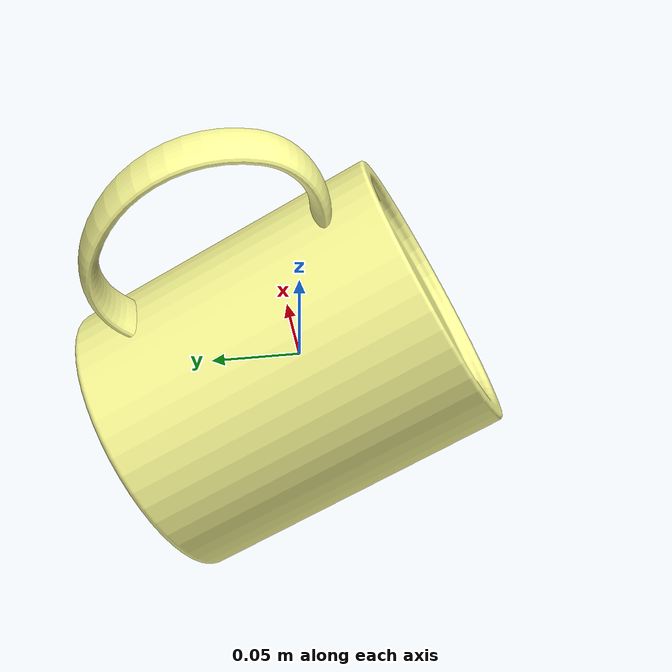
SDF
<sdf version="1.6">
  <model name="mug1_3">
    <link name="link">
      <pose frame="">-0 0 0.005 0 -0 0</pose>
      <inertial>
        <mass>0.5</mass>
        <inertia>
          <ixx>0.0001847680255950208</ixx>
          <ixy>0</ixy>
          <ixz>0</ixz>
          <iyy>0.0001232930851666833</iyy>
          <iyz>0</iyz>
          <izz>0.0001393112607616708</izz>
        </inertia>
        <pose frame="">0.0 0.0008839500000000025 0.0005237950000000004 1.57 0 3.14</pose>
      </inertial>
      <self_collide>0</self_collide>
      <kinematic>0</kinematic>
      <gravity>1</gravity>
      <visual name="visual">
        <geometry>
          <mesh>
            <uri>/home/zisu/simulator/siemens_challenge/sim_world/toolbox/mug1_3.dae</uri>
          </mesh>
        </geometry>
        <pose frame="">0 0 0 0 -0 0</pose>
        <transparency>0</transparency>
        <cast_shadows>0</cast_shadows>
      </visual>
      <collision name="collision">
        <laser_retro>0</laser_retro>
        <max_contacts>10</max_contacts>
        <pose frame="">0.0 0.0008839500000000025 0.0005237950000000004 1.57 0 3.14</pose>
        <geometry>
          <box>
            <size>0.030562 0.049085989999999996 0.044999979999999995</size>
          </box>
        </geometry>
        <surface>
          <friction>
            <ode>
              <mu>1</mu>
              <mu2>1</mu2>
              <fdir1>0 0 0</fdir1>
              <slip1>0</slip1>
              <slip2>0</slip2>
            </ode>
            <torsional>
              <coefficient>1</coefficient>
              <patch_radius>0</patch_radius>
              <surface_radius>0.05</surface_radius>
              <use_patch_radius>0</use_patch_radius>
              <ode>
                <slip>0</slip>
              </ode>
            </torsional>
          </friction>
          <bounce>
            <restitution_coefficient>0</restitution_coefficient>
            <threshold>1e+06</threshold>
          </bounce>
          <contact>
            <collide_without_contact>0</collide_without_contact>
            <collide_without_contact_bitmask>1</collide_without_contact_bitmask>
            <collide_bitmask>1</collide_bitmask>
            <ode>
              <soft_cfm>0</soft_cfm>
              <soft_erp>0.2</soft_erp>
              <kp>100000</kp>
              <kd>1</kd>
              <max_vel>1</max_vel>
              <min_depth>0.001</min_depth>
            </ode>
            <bullet>
              <split_impulse>1</split_impulse>
              <split_impulse_penetration_threshold>-0.01</split_impulse_penetration_threshold>
              <soft_cfm>0</soft_cfm>
              <soft_erp>0.2</soft_erp>
              <kp>100000</kp>
              <kd>1</kd>
            </bullet>
          </contact>
        </surface>
      </collision>
    </link>
    <static>0</static>
    <allow_auto_disable>1</allow_auto_disable>
  </model>
</sdf>
